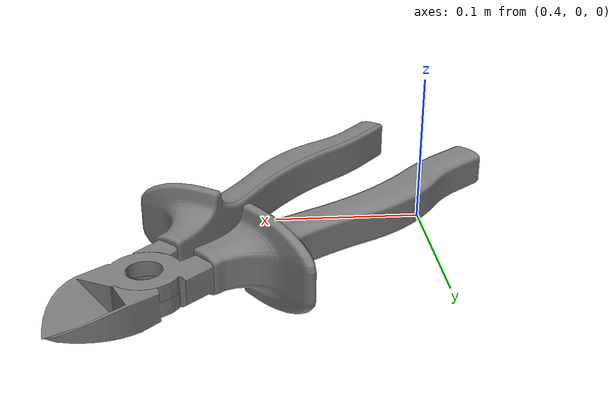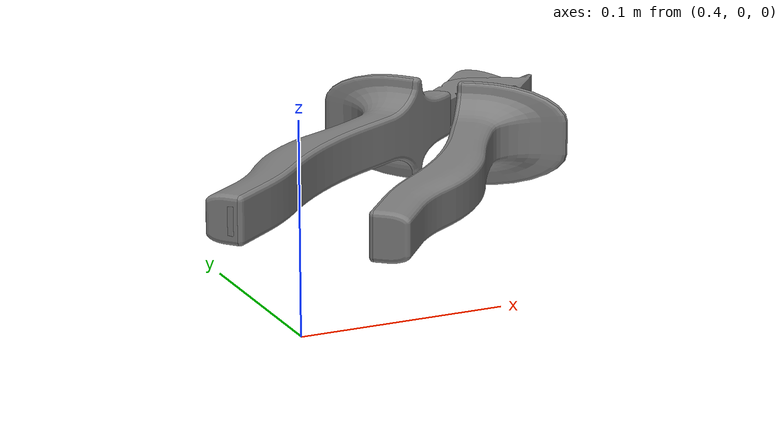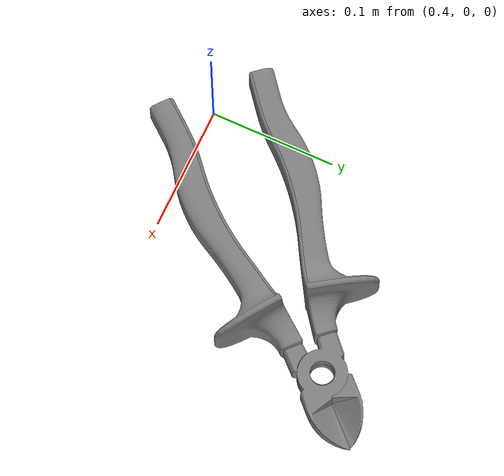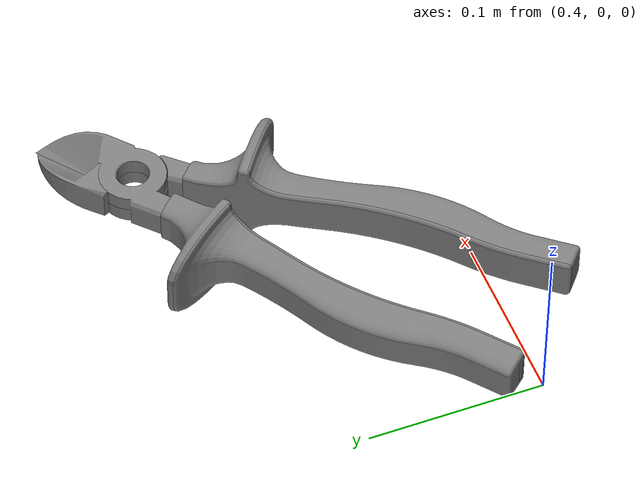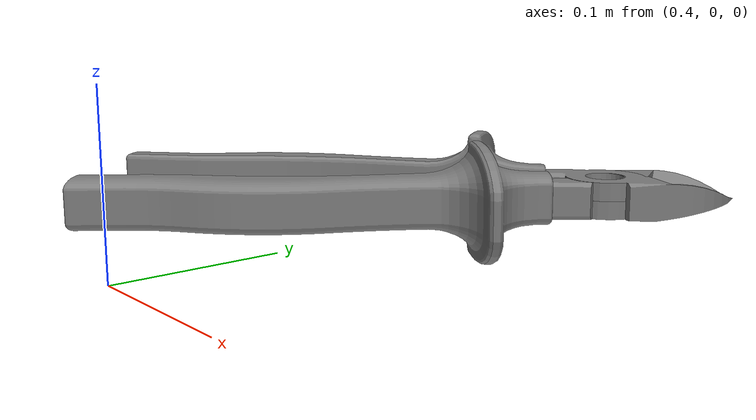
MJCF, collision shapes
<mujoco model="tongs">
  <compiler angle="radian" eulerseq="zyx" autolimits="true" />
  <default>
    <default class="tongs">
      <mesh scale="0.15 0.15 0.15" />
      <default class="tongs/visual">
        <geom condim="1" contype="0" conaffinity="0" group="2" />
      </default>
      <default class="tongs/collision">
        <geom condim="4" contype="1" conaffinity="14" friction="0.9 0.2 0.2" solref="0.001 2" group="4" />
      </default>
    </default>
  </default>
  <asset>
    <mesh file="tongs/textured_objs/original-10/original-10.obj" name="tongs_original-10" class="tongs" />
    <mesh file="tongs/textured_objs/original-11/original-11.obj" name="tongs_original-11" class="tongs" />
    <mesh file="tongs/textured_objs/original-12/original-12.obj" name="tongs_original-12" class="tongs" />
    <mesh file="tongs/textured_objs/original-13/original-13.obj" name="tongs_original-13" class="tongs" />
    <mesh file="tongs/textured_objs/original-15/original-15.obj" name="tongs_original-15" class="tongs" />
    <mesh file="tongs/textured_objs/original-16/original-16.obj" name="tongs_original-16" class="tongs" />
    <mesh file="tongs/textured_objs/original-15/original-15.obj" name="tongs_original-15_cover" scale="0.151 0.151 0.151" />
    <mesh file="tongs/textured_objs/original-16/original-16.obj" name="tongs_original-16_cover" scale="0.151 0.151 0.151" />
    <mesh file="tongs/textured_objs/original-3/original-3.obj" name="tongs_original-3" class="tongs" />
    <mesh file="tongs/textured_objs/original-3/original-3.obj" name="tongs_original-3_cover" class="tongs" scale="0.151 0.151 0.151" />
    <mesh file="tongs/textured_objs/original-4/original-4.obj" name="tongs_original-4" class="tongs" />
    <mesh file="tongs/textured_objs/original-6/original-6.obj" name="tongs_original-6" class="tongs" />
    <mesh file="tongs/textured_objs/original-7/original-7.obj" name="tongs_original-7" class="tongs" />
    <mesh file="tongs/textured_objs/original-6/original-6.obj" name="tongs_original-6_cover" scale="0.151 0.151 0.151" />
    <mesh file="tongs/textured_objs/original-7/original-7.obj" name="tongs_original-7_cover" scale="0.151 0.151 0.151" />
  </asset>
  <worldbody>
    <!-- Tongs object -->
    <light directional="true" pos="0 0 0.5" dir="0 0 -1" castshadow="false" />
    <body name="link_1" pos="0.5 0.1 0.05" quat="0.2705980501 0.2705980501 0.6532814824 0.6532814824" childclass="tongs">
    <freejoint name="tongs_root"/>
      <body name="link_0" pos="0.0 0.0 0.6498597294837243">
        <joint name="joint_0" pos="0 0 -0.52" axis="0 1 0" range="-0.2 0.2" stiffness="2" springref="0.4" damping="0" type="hinge" limited="true"/>
        <geom type="mesh" mesh="tongs_original-10" class="tongs/visual" rgba="0.1 0.1 0.1 1" pos="0 0 -0.6498597294837243" mass="0" />
        <geom type="mesh" mesh="tongs_original-15_cover" class="tongs/visual" rgba="0.1 0.1 0.1 1" pos="0 0 -0.6498597294837243" mass="0" />
        <geom type="mesh" mesh="tongs_original-16_cover" class="tongs/visual" rgba="0.4 0 0 1" pos="0.001 0 -0.6498597294837243" mass="0" />
        <geom type="mesh" mesh="tongs_original-10" class="tongs/collision" pos="0 0 -0.6498597294837243" mass="0.01" />
        <geom type="mesh" mesh="tongs_original-15_cover" class="tongs/collision" pos="0 0 -0.6498597294837243" mass="0.01" />
        <geom type="mesh" mesh="tongs_original-16_cover" class="tongs/collision" pos="0 0 -0.6498597294837243" mass="0.01" />
      </body>
      <geom type="mesh" mesh="tongs_original-3_cover" class="tongs/visual" rgba="0.1 0.1 0.1 1" mass="0" />
      <geom type="mesh" mesh="tongs_original-4" class="tongs/visual" rgba="0.1 0.1 0.1 1" mass="0" />
      <geom type="mesh" mesh="tongs_original-6" class="tongs/visual" rgba="0.1 0.1 0.1 1" mass="0" />
      <geom type="mesh" mesh="tongs_original-7" class="tongs/visual" rgba="0.4 0 0 1" mass="0" />
      <geom type="mesh" mesh="tongs_original-6_cover" class="tongs/visual" rgba="0.1 0.1 0.1 1" pos="-0.001 0 0" mass="0" />
      <geom type="mesh" mesh="tongs_original-7_cover" class="tongs/visual" rgba="0.4 0 0 1" mass="0" />
      <geom type="mesh" mesh="tongs_original-11" class="tongs/visual" rgba="0 0 0 1" mass="0" />
      <geom name="tongs" type="mesh" mesh="tongs_original-13" pos="0 -0.005 0" class="tongs/visual" rgba="0 0 0 1" mass="0" />
      <geom type="mesh" mesh="tongs_original-3_cover" class="tongs/collision" mass="0.01" />
      <geom type="mesh" mesh="tongs_original-4" class="tongs/collision" mass="0.01" />
      <geom type="mesh" mesh="tongs_original-6" class="tongs/collision" mass="0.01" />
      <geom type="mesh" mesh="tongs_original-7" class="tongs/collision" mass="0.01" />
      <geom type="mesh" mesh="tongs_original-11" class="tongs/collision" mass="0.01" />

    </body>
  </worldbody>
  <actuator>

  </actuator>
</mujoco>
